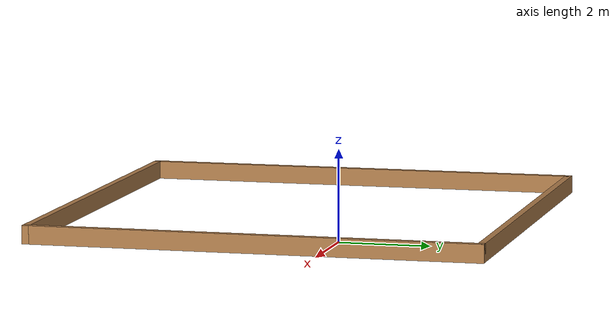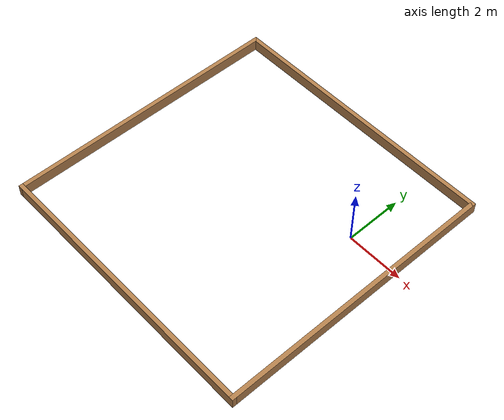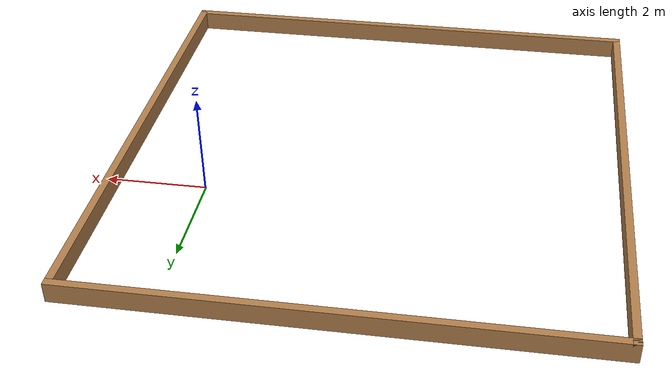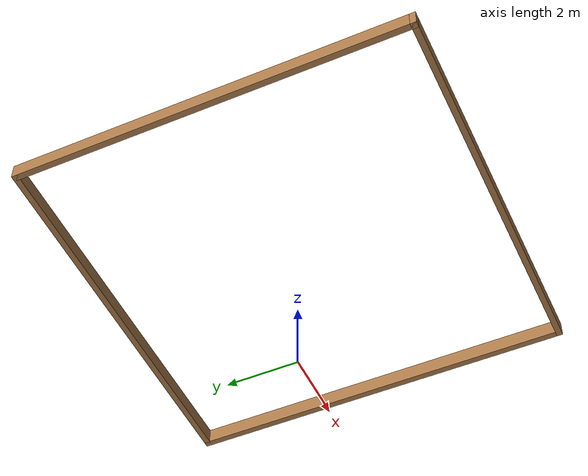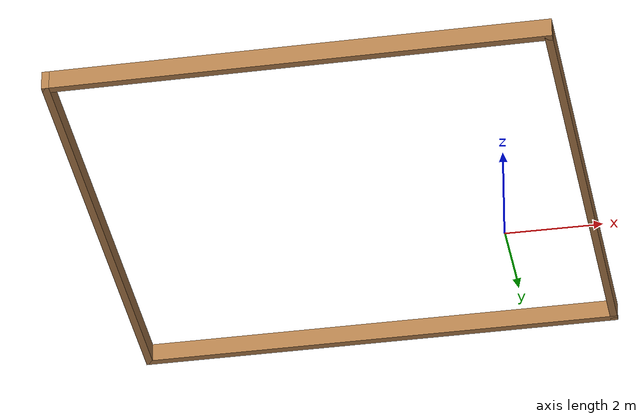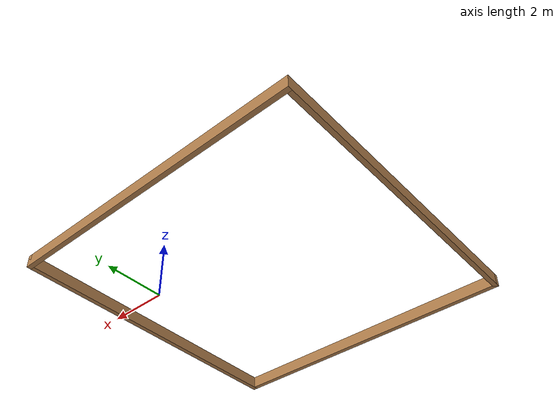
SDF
<?xml version='1.0'?>
<sdf version='1.6'>
  <model name='Border'>
    <pose frame=''>-3.144 -1.465 0 0 -0 0</pose>
    <link name='Wall_3'>
      <collision name='Wall_3_Collision'>
        <geometry>
          <box>
            <size>10 0.15 0.4</size>
          </box>
        </geometry>
        <pose frame=''>0 0 0.2 0 -0 0</pose>
      </collision>
      <visual name='Wall_3_Visual'>
        <pose frame=''>0 0 0.2 0 -0 0</pose>
        <geometry>
          <box>
            <size>10 0.15 0.4</size>
          </box>
        </geometry>
        <material>
          <script>
            <uri>file://media/materials/scripts/gazebo.material</uri>
            <name>Gazebo/Wood</name>
          </script>
          <ambient>1 1 1 1</ambient>
        </material>
      </visual>
      <pose frame=''>0 4.925 0 0 -0 0</pose>
    </link>
    <link name='Wall_4'>
      <collision name='Wall_4_Collision'>
        <geometry>
          <box>
            <size>10 0.15 0.4</size>
          </box>
        </geometry>
        <pose frame=''>0 0 0.2 0 -0 0</pose>
      </collision>
      <visual name='Wall_4_Visual'>
        <pose frame=''>0 0 0.2 0 -0 0</pose>
        <geometry>
          <box>
            <size>10 0.15 0.4</size>
          </box>
        </geometry>
        <material>
          <script>
            <uri>file://media/materials/scripts/gazebo.material</uri>
            <name>Gazebo/Wood</name>
          </script>
          <ambient>1 1 1 1</ambient>
        </material>
      </visual>
      <pose frame=''>4.925 0 0 0 0 -1.5708</pose>
    </link>
    <link name='Wall_5'>
      <collision name='Wall_5_Collision'>
        <geometry>
          <box>
            <size>10 0.15 0.4</size>
          </box>
        </geometry>
        <pose frame=''>0 0 0.2 0 -0 0</pose>
      </collision>
      <visual name='Wall_5_Visual'>
        <pose frame=''>0 0 0.2 0 -0 0</pose>
        <geometry>
          <box>
            <size>10 0.15 0.4</size>
          </box>
        </geometry>
        <material>
          <script>
            <uri>file://media/materials/scripts/gazebo.material</uri>
            <name>Gazebo/Wood</name>
          </script>
          <ambient>1 1 1 1</ambient>
        </material>
      </visual>
      <pose frame=''>0 -4.925 0 0 -0 3.14159</pose>
    </link>
    <link name='Wall_6'>
      <collision name='Wall_6_Collision'>
        <geometry>
          <box>
            <size>10 0.15 0.4</size>
          </box>
        </geometry>
        <pose frame=''>0 0 0.2 0 -0 0</pose>
      </collision>
      <visual name='Wall_6_Visual'>
        <pose frame=''>0 0 0.2 0 -0 0</pose>
        <geometry>
          <box>
            <size>10 0.15 0.4</size>
          </box>
        </geometry>
        <material>
          <script>
            <uri>file://media/materials/scripts/gazebo.material</uri>
            <name>Gazebo/Wood</name>
          </script>
          <ambient>1 1 1 1</ambient>
        </material>
      </visual>
      <pose frame=''>-4.925 0 0 0 -0 1.5708</pose>
    </link>
    <static>1</static>
  </model>
</sdf>
